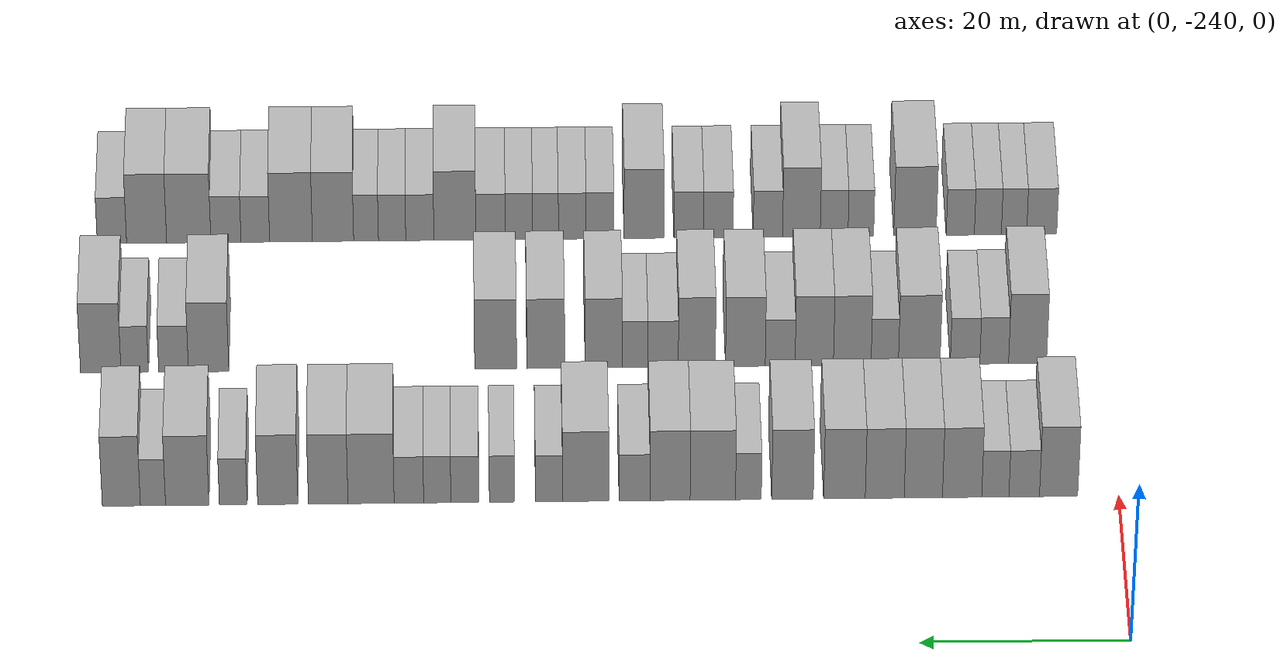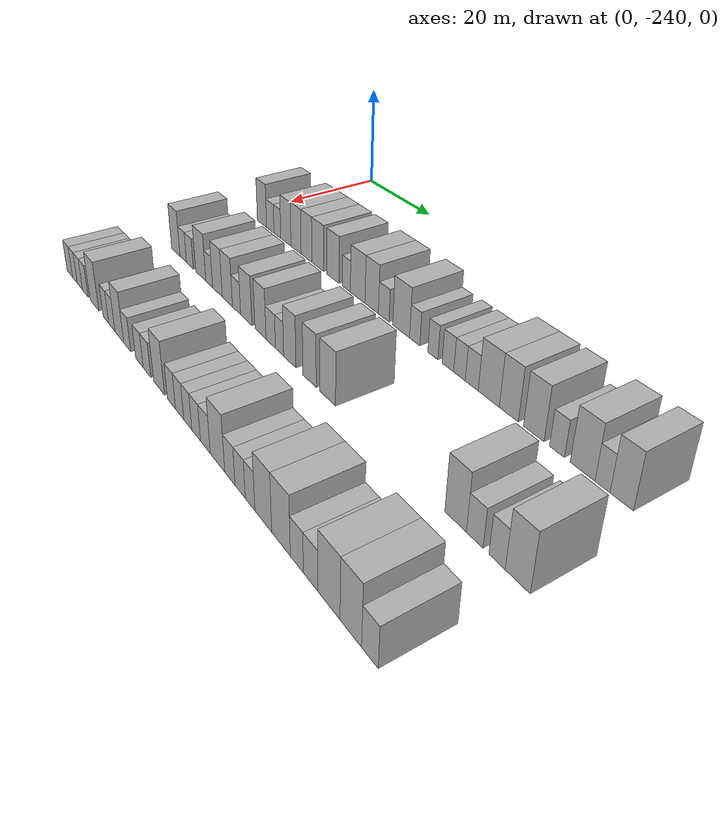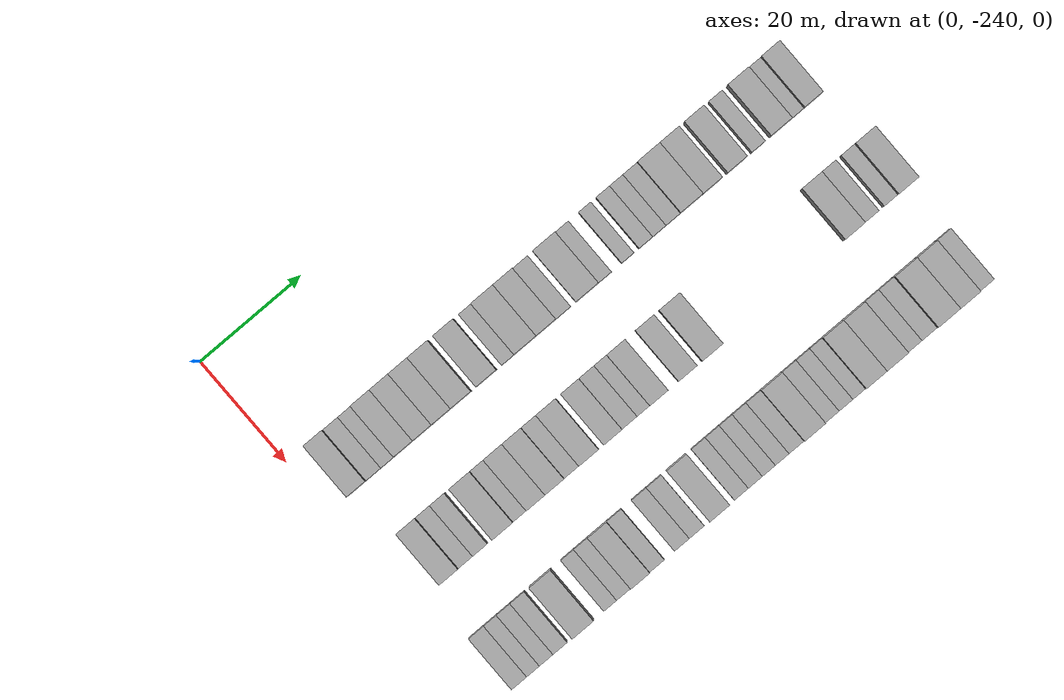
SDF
<sdf version="1.6">
 <world name="default">
  <model name="building_1">
   <static>1</static>
   <pose>25.0000 -234.1658 0 0.000000 0.000000 0.000000</pose>
   <link name="link">
    <pose>0 0 4.50 0 0 0</pose>
    <collision name="collision"><geometry><box><size>10.0000 3.6684 9.0000</size></box></geometry></collision>
    <visual name="visual">
     <cast_shadows>0</cast_shadows>
     <geometry><box><size>10.0000 3.6684 9.0000</size></box></geometry>
     <material>
      <script>
       <uri>model://HANNAS_wall/materials/scripts</uri>
       <uri>model://HANNAS_wall/materials/textures</uri>
       <name>vrc/HANNAS_wall</name>
      </script>
     </material>
    </visual>
   </link>
  </model>
  <model name="building_2">
   <static>1</static>
   <pose>25.0000 -230.8665 0 0.000000 0.000000 0.000000</pose>
   <link name="link">
    <pose>0 0 3.00 0 0 0</pose>
    <collision name="collision"><geometry><box><size>10.0000 2.9303 6.0000</size></box></geometry></collision>
    <visual name="visual">
     <cast_shadows>0</cast_shadows>
     <geometry><box><size>10.0000 2.9303 6.0000</size></box></geometry>
     <material>
      <script>
       <uri>model://HANNAS_wall/materials/scripts</uri>
       <uri>model://HANNAS_wall/materials/textures</uri>
       <name>vrc/HANNAS_wall</name>
      </script>
     </material>
    </visual>
   </link>
  </model>
  <model name="building_3">
   <static>1</static>
   <pose>25.0000 -228.0963 0 0.000000 0.000000 0.000000</pose>
   <link name="link">
    <pose>0 0 3.00 0 0 0</pose>
    <collision name="collision"><geometry><box><size>10.0000 2.6101 6.0000</size></box></geometry></collision>
    <visual name="visual">
     <cast_shadows>0</cast_shadows>
     <geometry><box><size>10.0000 2.6101 6.0000</size></box></geometry>
     <material>
      <script>
       <uri>model://HANNAS_wall/materials/scripts</uri>
       <uri>model://HANNAS_wall/materials/textures</uri>
       <name>vrc/HANNAS_wall</name>
      </script>
     </material>
    </visual>
   </link>
  </model>
  <model name="building_4">
   <static>1</static>
   <pose>25.0000 -224.9095 0 0.000000 0.000000 0.000000</pose>
   <link name="link">
    <pose>0 0 4.50 0 0 0</pose>
    <collision name="collision"><geometry><box><size>10.0000 3.7635 9.0000</size></box></geometry></collision>
    <visual name="visual">
     <cast_shadows>0</cast_shadows>
     <geometry><box><size>10.0000 3.7635 9.0000</size></box></geometry>
     <material>
      <script>
       <uri>model://HANNAS_wall/materials/scripts</uri>
       <uri>model://HANNAS_wall/materials/textures</uri>
       <name>vrc/HANNAS_wall</name>
      </script>
     </material>
    </visual>
   </link>
  </model>
  <model name="building_5">
   <static>1</static>
   <pose>25.0000 -221.1921 0 0.000000 0.000000 0.000000</pose>
   <link name="link">
    <pose>0 0 4.50 0 0 0</pose>
    <collision name="collision"><geometry><box><size>10.0000 3.6712 9.0000</size></box></geometry></collision>
    <visual name="visual">
     <cast_shadows>0</cast_shadows>
     <geometry><box><size>10.0000 3.6712 9.0000</size></box></geometry>
     <material>
      <script>
       <uri>model://HANNAS_wall/materials/scripts</uri>
       <uri>model://HANNAS_wall/materials/textures</uri>
       <name>vrc/HANNAS_wall</name>
      </script>
     </material>
    </visual>
   </link>
  </model>
  <model name="building_6">
   <static>1</static>
   <pose>25.0000 -217.4901 0 0.000000 0.000000 0.000000</pose>
   <link name="link">
    <pose>0 0 4.50 0 0 0</pose>
    <collision name="collision"><geometry><box><size>10.0000 3.7329 9.0000</size></box></geometry></collision>
    <visual name="visual">
     <cast_shadows>0</cast_shadows>
     <geometry><box><size>10.0000 3.7329 9.0000</size></box></geometry>
     <material>
      <script>
       <uri>model://HANNAS_wall/materials/scripts</uri>
       <uri>model://HANNAS_wall/materials/textures</uri>
       <name>vrc/HANNAS_wall</name>
      </script>
     </material>
    </visual>
   </link>
  </model>
  <model name="building_7">
   <static>1</static>
   <pose>25.0000 -213.6293 0 0.000000 0.000000 0.000000</pose>
   <link name="link">
    <pose>0 0 4.50 0 0 0</pose>
    <collision name="collision"><geometry><box><size>10.0000 3.9886 9.0000</size></box></geometry></collision>
    <visual name="visual">
     <cast_shadows>0</cast_shadows>
     <geometry><box><size>10.0000 3.9886 9.0000</size></box></geometry>
     <material>
      <script>
       <uri>model://HANNAS_wall/materials/scripts</uri>
       <uri>model://HANNAS_wall/materials/textures</uri>
       <name>vrc/HANNAS_wall</name>
      </script>
     </material>
    </visual>
   </link>
  </model>
  <model name="building_8">
   <static>1</static>
   <pose>25.0000 -208.6443 0 0.000000 0.000000 0.000000</pose>
   <link name="link">
    <pose>0 0 4.50 0 0 0</pose>
    <collision name="collision"><geometry><box><size>10.0000 3.9814 9.0000</size></box></geometry></collision>
    <visual name="visual">
     <cast_shadows>0</cast_shadows>
     <geometry><box><size>10.0000 3.9814 9.0000</size></box></geometry>
     <material>
      <script>
       <uri>model://HANNAS_wall/materials/scripts</uri>
       <uri>model://HANNAS_wall/materials/textures</uri>
       <name>vrc/HANNAS_wall</name>
      </script>
     </material>
    </visual>
   </link>
  </model>
  <model name="building_9">
   <static>1</static>
   <pose>25.0000 -204.4172 0 0.000000 0.000000 0.000000</pose>
   <link name="link">
    <pose>0 0 3.00 0 0 0</pose>
    <collision name="collision"><geometry><box><size>10.0000 2.4729 6.0000</size></box></geometry></collision>
    <visual name="visual">
     <cast_shadows>0</cast_shadows>
     <geometry><box><size>10.0000 2.4729 6.0000</size></box></geometry>
     <material>
      <script>
       <uri>model://HANNAS_wall/materials/scripts</uri>
       <uri>model://HANNAS_wall/materials/textures</uri>
       <name>vrc/HANNAS_wall</name>
      </script>
     </material>
    </visual>
   </link>
  </model>
  <model name="building_10">
   <static>1</static>
   <pose>25.0000 -201.0050 0 0.000000 0.000000 0.000000</pose>
   <link name="link">
    <pose>0 0 4.50 0 0 0</pose>
    <collision name="collision"><geometry><box><size>10.0000 4.3516 9.0000</size></box></geometry></collision>
    <visual name="visual">
     <cast_shadows>0</cast_shadows>
     <geometry><box><size>10.0000 4.3516 9.0000</size></box></geometry>
     <material>
      <script>
       <uri>model://HANNAS_wall/materials/scripts</uri>
       <uri>model://HANNAS_wall/materials/textures</uri>
       <name>vrc/HANNAS_wall</name>
      </script>
     </material>
    </visual>
   </link>
  </model>
  <model name="building_11">
   <static>1</static>
   <pose>25.0000 -196.9007 0 0.000000 0.000000 0.000000</pose>
   <link name="link">
    <pose>0 0 4.50 0 0 0</pose>
    <collision name="collision"><geometry><box><size>10.0000 3.8571 9.0000</size></box></geometry></collision>
    <visual name="visual">
     <cast_shadows>0</cast_shadows>
     <geometry><box><size>10.0000 3.8571 9.0000</size></box></geometry>
     <material>
      <script>
       <uri>model://HANNAS_wall/materials/scripts</uri>
       <uri>model://HANNAS_wall/materials/textures</uri>
       <name>vrc/HANNAS_wall</name>
      </script>
     </material>
    </visual>
   </link>
  </model>
  <model name="building_12">
   <static>1</static>
   <pose>25.0000 -193.5009 0 0.000000 0.000000 0.000000</pose>
   <link name="link">
    <pose>0 0 3.00 0 0 0</pose>
    <collision name="collision"><geometry><box><size>10.0000 2.9424 6.0000</size></box></geometry></collision>
    <visual name="visual">
     <cast_shadows>0</cast_shadows>
     <geometry><box><size>10.0000 2.9424 6.0000</size></box></geometry>
     <material>
      <script>
       <uri>model://HANNAS_wall/materials/scripts</uri>
       <uri>model://HANNAS_wall/materials/textures</uri>
       <name>vrc/HANNAS_wall</name>
      </script>
     </material>
    </visual>
   </link>
  </model>
  <model name="building_13">
   <static>1</static>
   <pose>25.0000 -188.8148 0 0.000000 0.000000 0.000000</pose>
   <link name="link">
    <pose>0 0 4.50 0 0 0</pose>
    <collision name="collision"><geometry><box><size>10.0000 4.4298 9.0000</size></box></geometry></collision>
    <visual name="visual">
     <cast_shadows>0</cast_shadows>
     <geometry><box><size>10.0000 4.4298 9.0000</size></box></geometry>
     <material>
      <script>
       <uri>model://HANNAS_wall/materials/scripts</uri>
       <uri>model://HANNAS_wall/materials/textures</uri>
       <name>vrc/HANNAS_wall</name>
      </script>
     </material>
    </visual>
   </link>
  </model>
  <model name="building_14">
   <static>1</static>
   <pose>25.0000 -185.3080 0 0.000000 0.000000 0.000000</pose>
   <link name="link">
    <pose>0 0 3.00 0 0 0</pose>
    <collision name="collision"><geometry><box><size>10.0000 2.5838 6.0000</size></box></geometry></collision>
    <visual name="visual">
     <cast_shadows>0</cast_shadows>
     <geometry><box><size>10.0000 2.5838 6.0000</size></box></geometry>
     <material>
      <script>
       <uri>model://HANNAS_wall/materials/scripts</uri>
       <uri>model://HANNAS_wall/materials/textures</uri>
       <name>vrc/HANNAS_wall</name>
      </script>
     </material>
    </visual>
   </link>
  </model>
  <model name="building_15">
   <static>1</static>
   <pose>25.0000 -180.8055 0 0.000000 0.000000 0.000000</pose>
   <link name="link">
    <pose>0 0 3.00 0 0 0</pose>
    <collision name="collision"><geometry><box><size>10.0000 2.4212 6.0000</size></box></geometry></collision>
    <visual name="visual">
     <cast_shadows>0</cast_shadows>
     <geometry><box><size>10.0000 2.4212 6.0000</size></box></geometry>
     <material>
      <script>
       <uri>model://HANNAS_wall/materials/scripts</uri>
       <uri>model://HANNAS_wall/materials/textures</uri>
       <name>vrc/HANNAS_wall</name>
      </script>
     </material>
    </visual>
   </link>
  </model>
  <model name="building_16">
   <static>1</static>
   <pose>25.0000 -177.2514 0 0.000000 0.000000 0.000000</pose>
   <link name="link">
    <pose>0 0 3.00 0 0 0</pose>
    <collision name="collision"><geometry><box><size>10.0000 2.6870 6.0000</size></box></geometry></collision>
    <visual name="visual">
     <cast_shadows>0</cast_shadows>
     <geometry><box><size>10.0000 2.6870 6.0000</size></box></geometry>
     <material>
      <script>
       <uri>model://HANNAS_wall/materials/scripts</uri>
       <uri>model://HANNAS_wall/materials/textures</uri>
       <name>vrc/HANNAS_wall</name>
      </script>
     </material>
    </visual>
   </link>
  </model>
  <model name="building_17">
   <static>1</static>
   <pose>25.0000 -174.6028 0 0.000000 0.000000 0.000000</pose>
   <link name="link">
    <pose>0 0 3.00 0 0 0</pose>
    <collision name="collision"><geometry><box><size>10.0000 2.6101 6.0000</size></box></geometry></collision>
    <visual name="visual">
     <cast_shadows>0</cast_shadows>
     <geometry><box><size>10.0000 2.6101 6.0000</size></box></geometry>
     <material>
      <script>
       <uri>model://HANNAS_wall/materials/scripts</uri>
       <uri>model://HANNAS_wall/materials/textures</uri>
       <name>vrc/HANNAS_wall</name>
      </script>
     </material>
    </visual>
   </link>
  </model>
  <model name="building_18">
   <static>1</static>
   <pose>25.0000 -171.8830 0 0.000000 0.000000 0.000000</pose>
   <link name="link">
    <pose>0 0 3.00 0 0 0</pose>
    <collision name="collision"><geometry><box><size>10.0000 2.8294 6.0000</size></box></geometry></collision>
    <visual name="visual">
     <cast_shadows>0</cast_shadows>
     <geometry><box><size>10.0000 2.8294 6.0000</size></box></geometry>
     <material>
      <script>
       <uri>model://HANNAS_wall/materials/scripts</uri>
       <uri>model://HANNAS_wall/materials/textures</uri>
       <name>vrc/HANNAS_wall</name>
      </script>
     </material>
    </visual>
   </link>
  </model>
  <model name="building_19">
   <static>1</static>
   <pose>25.0000 -168.2579 0 0.000000 0.000000 0.000000</pose>
   <link name="link">
    <pose>0 0 4.50 0 0 0</pose>
    <collision name="collision"><geometry><box><size>10.0000 4.4210 9.0000</size></box></geometry></collision>
    <visual name="visual">
     <cast_shadows>0</cast_shadows>
     <geometry><box><size>10.0000 4.4210 9.0000</size></box></geometry>
     <material>
      <script>
       <uri>model://HANNAS_wall/materials/scripts</uri>
       <uri>model://HANNAS_wall/materials/textures</uri>
       <name>vrc/HANNAS_wall</name>
      </script>
     </material>
    </visual>
   </link>
  </model>
  <model name="building_20">
   <static>1</static>
   <pose>25.0000 -164.1533 0 0.000000 0.000000 0.000000</pose>
   <link name="link">
    <pose>0 0 4.50 0 0 0</pose>
    <collision name="collision"><geometry><box><size>10.0000 3.7882 9.0000</size></box></geometry></collision>
    <visual name="visual">
     <cast_shadows>0</cast_shadows>
     <geometry><box><size>10.0000 3.7882 9.0000</size></box></geometry>
     <material>
      <script>
       <uri>model://HANNAS_wall/materials/scripts</uri>
       <uri>model://HANNAS_wall/materials/textures</uri>
       <name>vrc/HANNAS_wall</name>
      </script>
     </material>
    </visual>
   </link>
  </model>
  <model name="building_21">
   <static>1</static>
   <pose>25.0000 -159.3294 0 0.000000 0.000000 0.000000</pose>
   <link name="link">
    <pose>0 0 4.50 0 0 0</pose>
    <collision name="collision"><geometry><box><size>10.0000 3.8596 9.0000</size></box></geometry></collision>
    <visual name="visual">
     <cast_shadows>0</cast_shadows>
     <geometry><box><size>10.0000 3.8596 9.0000</size></box></geometry>
     <material>
      <script>
       <uri>model://HANNAS_wall/materials/scripts</uri>
       <uri>model://HANNAS_wall/materials/textures</uri>
       <name>vrc/HANNAS_wall</name>
      </script>
     </material>
    </visual>
   </link>
  </model>
  <model name="building_22">
   <static>1</static>
   <pose>25.0000 -155.0684 0 0.000000 0.000000 0.000000</pose>
   <link name="link">
    <pose>0 0 3.00 0 0 0</pose>
    <collision name="collision"><geometry><box><size>10.0000 2.6623 6.0000</size></box></geometry></collision>
    <visual name="visual">
     <cast_shadows>0</cast_shadows>
     <geometry><box><size>10.0000 2.6623 6.0000</size></box></geometry>
     <material>
      <script>
       <uri>model://HANNAS_wall/materials/scripts</uri>
       <uri>model://HANNAS_wall/materials/textures</uri>
       <name>vrc/HANNAS_wall</name>
      </script>
     </material>
    </visual>
   </link>
  </model>
  <model name="building_23">
   <static>1</static>
   <pose>25.0000 -150.6576 0 0.000000 0.000000 0.000000</pose>
   <link name="link">
    <pose>0 0 4.50 0 0 0</pose>
    <collision name="collision"><geometry><box><size>10.0000 4.1593 9.0000</size></box></geometry></collision>
    <visual name="visual">
     <cast_shadows>0</cast_shadows>
     <geometry><box><size>10.0000 4.1593 9.0000</size></box></geometry>
     <material>
      <script>
       <uri>model://HANNAS_wall/materials/scripts</uri>
       <uri>model://HANNAS_wall/materials/textures</uri>
       <name>vrc/HANNAS_wall</name>
      </script>
     </material>
    </visual>
   </link>
  </model>
  <model name="building_24">
   <static>1</static>
   <pose>25.0000 -147.3732 0 0.000000 0.000000 0.000000</pose>
   <link name="link">
    <pose>0 0 3.00 0 0 0</pose>
    <collision name="collision"><geometry><box><size>10.0000 2.4095 6.0000</size></box></geometry></collision>
    <visual name="visual">
     <cast_shadows>0</cast_shadows>
     <geometry><box><size>10.0000 2.4095 6.0000</size></box></geometry>
     <material>
      <script>
       <uri>model://HANNAS_wall/materials/scripts</uri>
       <uri>model://HANNAS_wall/materials/textures</uri>
       <name>vrc/HANNAS_wall</name>
      </script>
     </material>
    </visual>
   </link>
  </model>
  <model name="building_25">
   <static>1</static>
   <pose>25.0000 -144.3496 0 0.000000 0.000000 0.000000</pose>
   <link name="link">
    <pose>0 0 4.50 0 0 0</pose>
    <collision name="collision"><geometry><box><size>10.0000 3.6378 9.0000</size></box></geometry></collision>
    <visual name="visual">
     <cast_shadows>0</cast_shadows>
     <geometry><box><size>10.0000 3.6378 9.0000</size></box></geometry>
     <material>
      <script>
       <uri>model://HANNAS_wall/materials/scripts</uri>
       <uri>model://HANNAS_wall/materials/textures</uri>
       <name>vrc/HANNAS_wall</name>
      </script>
     </material>
    </visual>
   </link>
  </model>
  <model name="building_126">
   <static>1</static>
   <pose>44.0000 -232.1509 0 0.000000 0.000000 0.000000</pose>
   <link name="link">
    <pose>0 0 4.50 0 0 0</pose>
    <collision name="collision"><geometry><box><size>10.0000 3.6982 9.0000</size></box></geometry></collision>
    <visual name="visual">
     <cast_shadows>0</cast_shadows>
     <geometry><box><size>10.0000 3.6982 9.0000</size></box></geometry>
     <material>
      <script>
       <uri>model://HANNAS_wall/materials/scripts</uri>
       <uri>model://HANNAS_wall/materials/textures</uri>
       <name>vrc/HANNAS_wall</name>
      </script>
     </material>
    </visual>
   </link>
  </model>
  <model name="building_127">
   <static>1</static>
   <pose>44.0000 -228.8991 0 0.000000 0.000000 0.000000</pose>
   <link name="link">
    <pose>0 0 3.00 0 0 0</pose>
    <collision name="collision"><geometry><box><size>10.0000 2.8053 6.0000</size></box></geometry></collision>
    <visual name="visual">
     <cast_shadows>0</cast_shadows>
     <geometry><box><size>10.0000 2.8053 6.0000</size></box></geometry>
     <material>
      <script>
       <uri>model://HANNAS_wall/materials/scripts</uri>
       <uri>model://HANNAS_wall/materials/textures</uri>
       <name>vrc/HANNAS_wall</name>
      </script>
     </material>
    </visual>
   </link>
  </model>
  <model name="building_128">
   <static>1</static>
   <pose>44.0000 -226.0578 0 0.000000 0.000000 0.000000</pose>
   <link name="link">
    <pose>0 0 3.00 0 0 0</pose>
    <collision name="collision"><geometry><box><size>10.0000 2.8773 6.0000</size></box></geometry></collision>
    <visual name="visual">
     <cast_shadows>0</cast_shadows>
     <geometry><box><size>10.0000 2.8773 6.0000</size></box></geometry>
     <material>
      <script>
       <uri>model://HANNAS_wall/materials/scripts</uri>
       <uri>model://HANNAS_wall/materials/textures</uri>
       <name>vrc/HANNAS_wall</name>
      </script>
     </material>
    </visual>
   </link>
  </model>
  <model name="building_129">
   <static>1</static>
   <pose>44.0000 -221.5878 0 0.000000 0.000000 0.000000</pose>
   <link name="link">
    <pose>0 0 4.50 0 0 0</pose>
    <collision name="collision"><geometry><box><size>10.0000 4.0626 9.0000</size></box></geometry></collision>
    <visual name="visual">
     <cast_shadows>0</cast_shadows>
     <geometry><box><size>10.0000 4.0626 9.0000</size></box></geometry>
     <material>
      <script>
       <uri>model://HANNAS_wall/materials/scripts</uri>
       <uri>model://HANNAS_wall/materials/textures</uri>
       <name>vrc/HANNAS_wall</name>
      </script>
     </material>
    </visual>
   </link>
  </model>
  <model name="building_130">
   <static>1</static>
   <pose>44.0000 -218.2245 0 0.000000 0.000000 0.000000</pose>
   <link name="link">
    <pose>0 0 3.00 0 0 0</pose>
    <collision name="collision"><geometry><box><size>10.0000 2.6639 6.0000</size></box></geometry></collision>
    <visual name="visual">
     <cast_shadows>0</cast_shadows>
     <geometry><box><size>10.0000 2.6639 6.0000</size></box></geometry>
     <material>
      <script>
       <uri>model://HANNAS_wall/materials/scripts</uri>
       <uri>model://HANNAS_wall/materials/textures</uri>
       <name>vrc/HANNAS_wall</name>
      </script>
     </material>
    </visual>
   </link>
  </model>
  <model name="building_131">
   <static>1</static>
   <pose>44.0000 -215.0575 0 0.000000 0.000000 0.000000</pose>
   <link name="link">
    <pose>0 0 4.50 0 0 0</pose>
    <collision name="collision"><geometry><box><size>10.0000 3.6701 9.0000</size></box></geometry></collision>
    <visual name="visual">
     <cast_shadows>0</cast_shadows>
     <geometry><box><size>10.0000 3.6701 9.0000</size></box></geometry>
     <material>
      <script>
       <uri>model://HANNAS_wall/materials/scripts</uri>
       <uri>model://HANNAS_wall/materials/textures</uri>
       <name>vrc/HANNAS_wall</name>
      </script>
     </material>
    </visual>
   </link>
  </model>
  <model name="building_132">
   <static>1</static>
   <pose>44.0000 -211.3542 0 0.000000 0.000000 0.000000</pose>
   <link name="link">
    <pose>0 0 4.50 0 0 0</pose>
    <collision name="collision"><geometry><box><size>10.0000 3.7365 9.0000</size></box></geometry></collision>
    <visual name="visual">
     <cast_shadows>0</cast_shadows>
     <geometry><box><size>10.0000 3.7365 9.0000</size></box></geometry>
     <material>
      <script>
       <uri>model://HANNAS_wall/materials/scripts</uri>
       <uri>model://HANNAS_wall/materials/textures</uri>
       <name>vrc/HANNAS_wall</name>
      </script>
     </material>
    </visual>
   </link>
  </model>
  <model name="building_133">
   <static>1</static>
   <pose>44.0000 -208.0338 0 0.000000 0.000000 0.000000</pose>
   <link name="link">
    <pose>0 0 3.00 0 0 0</pose>
    <collision name="collision"><geometry><box><size>10.0000 2.9043 6.0000</size></box></geometry></collision>
    <visual name="visual">
     <cast_shadows>0</cast_shadows>
     <geometry><box><size>10.0000 2.9043 6.0000</size></box></geometry>
     <material>
      <script>
       <uri>model://HANNAS_wall/materials/scripts</uri>
       <uri>model://HANNAS_wall/materials/textures</uri>
       <name>vrc/HANNAS_wall</name>
      </script>
     </material>
    </visual>
   </link>
  </model>
  <model name="building_134">
   <static>1</static>
   <pose>44.0000 -204.6474 0 0.000000 0.000000 0.000000</pose>
   <link name="link">
    <pose>0 0 4.50 0 0 0</pose>
    <collision name="collision"><geometry><box><size>10.0000 3.8683 9.0000</size></box></geometry></collision>
    <visual name="visual">
     <cast_shadows>0</cast_shadows>
     <geometry><box><size>10.0000 3.8683 9.0000</size></box></geometry>
     <material>
      <script>
       <uri>model://HANNAS_wall/materials/scripts</uri>
       <uri>model://HANNAS_wall/materials/textures</uri>
       <name>vrc/HANNAS_wall</name>
      </script>
     </material>
    </visual>
   </link>
  </model>
  <model name="building_135">
   <static>1</static>
   <pose>44.0000 -199.9114 0 0.000000 0.000000 0.000000</pose>
   <link name="link">
    <pose>0 0 4.50 0 0 0</pose>
    <collision name="collision"><geometry><box><size>10.0000 3.6038 9.0000</size></box></geometry></collision>
    <visual name="visual">
     <cast_shadows>0</cast_shadows>
     <geometry><box><size>10.0000 3.6038 9.0000</size></box></geometry>
     <material>
      <script>
       <uri>model://HANNAS_wall/materials/scripts</uri>
       <uri>model://HANNAS_wall/materials/textures</uri>
       <name>vrc/HANNAS_wall</name>
      </script>
     </material>
    </visual>
   </link>
  </model>
  <model name="building_136">
   <static>1</static>
   <pose>44.0000 -196.6252 0 0.000000 0.000000 0.000000</pose>
   <link name="link">
    <pose>0 0 3.00 0 0 0</pose>
    <collision name="collision"><geometry><box><size>10.0000 2.9686 6.0000</size></box></geometry></collision>
    <visual name="visual">
     <cast_shadows>0</cast_shadows>
     <geometry><box><size>10.0000 2.9686 6.0000</size></box></geometry>
     <material>
      <script>
       <uri>model://HANNAS_wall/materials/scripts</uri>
       <uri>model://HANNAS_wall/materials/textures</uri>
       <name>vrc/HANNAS_wall</name>
      </script>
     </material>
    </visual>
   </link>
  </model>
  <model name="building_137">
   <static>1</static>
   <pose>44.0000 -193.9033 0 0.000000 0.000000 0.000000</pose>
   <link name="link">
    <pose>0 0 3.00 0 0 0</pose>
    <collision name="collision"><geometry><box><size>10.0000 2.4753 6.0000</size></box></geometry></collision>
    <visual name="visual">
     <cast_shadows>0</cast_shadows>
     <geometry><box><size>10.0000 2.4753 6.0000</size></box></geometry>
     <material>
      <script>
       <uri>model://HANNAS_wall/materials/scripts</uri>
       <uri>model://HANNAS_wall/materials/textures</uri>
       <name>vrc/HANNAS_wall</name>
      </script>
     </material>
    </visual>
   </link>
  </model>
  <model name="building_138">
   <static>1</static>
   <pose>44.0000 -190.8539 0 0.000000 0.000000 0.000000</pose>
   <link name="link">
    <pose>0 0 4.50 0 0 0</pose>
    <collision name="collision"><geometry><box><size>10.0000 3.6235 9.0000</size></box></geometry></collision>
    <visual name="visual">
     <cast_shadows>0</cast_shadows>
     <geometry><box><size>10.0000 3.6235 9.0000</size></box></geometry>
     <material>
      <script>
       <uri>model://HANNAS_wall/materials/scripts</uri>
       <uri>model://HANNAS_wall/materials/textures</uri>
       <name>vrc/HANNAS_wall</name>
      </script>
     </material>
    </visual>
   </link>
  </model>
  <model name="building_139">
   <static>1</static>
   <pose>44.0000 -185.2040 0 0.000000 0.000000 0.000000</pose>
   <link name="link">
    <pose>0 0 4.50 0 0 0</pose>
    <collision name="collision"><geometry><box><size>10.0000 3.6763 9.0000</size></box></geometry></collision>
    <visual name="visual">
     <cast_shadows>0</cast_shadows>
     <geometry><box><size>10.0000 3.6763 9.0000</size></box></geometry>
     <material>
      <script>
       <uri>model://HANNAS_wall/materials/scripts</uri>
       <uri>model://HANNAS_wall/materials/textures</uri>
       <name>vrc/HANNAS_wall</name>
      </script>
     </material>
    </visual>
   </link>
  </model>
  <model name="building_140">
   <static>1</static>
   <pose>44.0000 -180.3250 0 0.000000 0.000000 0.000000</pose>
   <link name="link">
    <pose>0 0 4.50 0 0 0</pose>
    <collision name="collision"><geometry><box><size>10.0000 4.0817 9.0000</size></box></geometry></collision>
    <visual name="visual">
     <cast_shadows>0</cast_shadows>
     <geometry><box><size>10.0000 4.0817 9.0000</size></box></geometry>
     <material>
      <script>
       <uri>model://HANNAS_wall/materials/scripts</uri>
       <uri>model://HANNAS_wall/materials/textures</uri>
       <name>vrc/HANNAS_wall</name>
      </script>
     </material>
    </visual>
   </link>
  </model>
  <model name="building_141">
   <static>1</static>
   <pose>44.0000 -152.3847 0 0.000000 0.000000 0.000000</pose>
   <link name="link">
    <pose>0 0 4.50 0 0 0</pose>
    <collision name="collision"><geometry><box><size>10.0000 3.9329 9.0000</size></box></geometry></collision>
    <visual name="visual">
     <cast_shadows>0</cast_shadows>
     <geometry><box><size>10.0000 3.9329 9.0000</size></box></geometry>
     <material>
      <script>
       <uri>model://HANNAS_wall/materials/scripts</uri>
       <uri>model://HANNAS_wall/materials/textures</uri>
       <name>vrc/HANNAS_wall</name>
      </script>
     </material>
    </visual>
   </link>
  </model>
  <model name="building_142">
   <static>1</static>
   <pose>44.0000 -148.9745 0 0.000000 0.000000 0.000000</pose>
   <link name="link">
    <pose>0 0 3.00 0 0 0</pose>
    <collision name="collision"><geometry><box><size>10.0000 2.8876 6.0000</size></box></geometry></collision>
    <visual name="visual">
     <cast_shadows>0</cast_shadows>
     <geometry><box><size>10.0000 2.8876 6.0000</size></box></geometry>
     <material>
      <script>
       <uri>model://HANNAS_wall/materials/scripts</uri>
       <uri>model://HANNAS_wall/materials/textures</uri>
       <name>vrc/HANNAS_wall</name>
      </script>
     </material>
    </visual>
   </link>
  </model>
  <model name="building_143">
   <static>1</static>
   <pose>44.0000 -145.1946 0 0.000000 0.000000 0.000000</pose>
   <link name="link">
    <pose>0 0 3.00 0 0 0</pose>
    <collision name="collision"><geometry><box><size>10.0000 2.6723 6.0000</size></box></geometry></collision>
    <visual name="visual">
     <cast_shadows>0</cast_shadows>
     <geometry><box><size>10.0000 2.6723 6.0000</size></box></geometry>
     <material>
      <script>
       <uri>model://HANNAS_wall/materials/scripts</uri>
       <uri>model://HANNAS_wall/materials/textures</uri>
       <name>vrc/HANNAS_wall</name>
      </script>
     </material>
    </visual>
   </link>
  </model>
  <model name="building_144">
   <static>1</static>
   <pose>44.0000 -141.8891 0 0.000000 0.000000 0.000000</pose>
   <link name="link">
    <pose>0 0 4.50 0 0 0</pose>
    <collision name="collision"><geometry><box><size>10.0000 3.9387 9.0000</size></box></geometry></collision>
    <visual name="visual">
     <cast_shadows>0</cast_shadows>
     <geometry><box><size>10.0000 3.9387 9.0000</size></box></geometry>
     <material>
      <script>
       <uri>model://HANNAS_wall/materials/scripts</uri>
       <uri>model://HANNAS_wall/materials/textures</uri>
       <name>vrc/HANNAS_wall</name>
      </script>
     </material>
    </visual>
   </link>
  </model>
  <model name="building_238">
   <static>1</static>
   <pose>63.0000 -234.5111 0 0.000000 0.000000 0.000000</pose>
   <link name="link">
    <pose>0 0 3.00 0 0 0</pose>
    <collision name="collision"><geometry><box><size>10.0000 2.9778 6.0000</size></box></geometry></collision>
    <visual name="visual">
     <cast_shadows>0</cast_shadows>
     <geometry><box><size>10.0000 2.9778 6.0000</size></box></geometry>
     <material>
      <script>
       <uri>model://HANNAS_wall/materials/scripts</uri>
       <uri>model://HANNAS_wall/materials/textures</uri>
       <name>vrc/HANNAS_wall</name>
      </script>
     </material>
    </visual>
   </link>
  </model>
  <model name="building_239">
   <static>1</static>
   <pose>63.0000 -231.7676 0 0.000000 0.000000 0.000000</pose>
   <link name="link">
    <pose>0 0 3.00 0 0 0</pose>
    <collision name="collision"><geometry><box><size>10.0000 2.5092 6.0000</size></box></geometry></collision>
    <visual name="visual">
     <cast_shadows>0</cast_shadows>
     <geometry><box><size>10.0000 2.5092 6.0000</size></box></geometry>
     <material>
      <script>
       <uri>model://HANNAS_wall/materials/scripts</uri>
       <uri>model://HANNAS_wall/materials/textures</uri>
       <name>vrc/HANNAS_wall</name>
      </script>
     </material>
    </visual>
   </link>
  </model>
  <model name="building_240">
   <static>1</static>
   <pose>63.0000 -229.1777 0 0.000000 0.000000 0.000000</pose>
   <link name="link">
    <pose>0 0 3.00 0 0 0</pose>
    <collision name="collision"><geometry><box><size>10.0000 2.6707 6.0000</size></box></geometry></collision>
    <visual name="visual">
     <cast_shadows>0</cast_shadows>
     <geometry><box><size>10.0000 2.6707 6.0000</size></box></geometry>
     <material>
      <script>
       <uri>model://HANNAS_wall/materials/scripts</uri>
       <uri>model://HANNAS_wall/materials/textures</uri>
       <name>vrc/HANNAS_wall</name>
      </script>
     </material>
    </visual>
   </link>
  </model>
  <model name="building_241">
   <static>1</static>
   <pose>63.0000 -226.4483 0 0.000000 0.000000 0.000000</pose>
   <link name="link">
    <pose>0 0 3.00 0 0 0</pose>
    <collision name="collision"><geometry><box><size>10.0000 2.7881 6.0000</size></box></geometry></collision>
    <visual name="visual">
     <cast_shadows>0</cast_shadows>
     <geometry><box><size>10.0000 2.7881 6.0000</size></box></geometry>
     <material>
      <script>
       <uri>model://HANNAS_wall/materials/scripts</uri>
       <uri>model://HANNAS_wall/materials/textures</uri>
       <name>vrc/HANNAS_wall</name>
      </script>
     </material>
    </visual>
   </link>
  </model>
  <model name="building_242">
   <static>1</static>
   <pose>63.0000 -221.9590 0 0.000000 0.000000 0.000000</pose>
   <link name="link">
    <pose>0 0 4.50 0 0 0</pose>
    <collision name="collision"><geometry><box><size>10.0000 4.1905 9.0000</size></box></geometry></collision>
    <visual name="visual">
     <cast_shadows>0</cast_shadows>
     <geometry><box><size>10.0000 4.1905 9.0000</size></box></geometry>
     <material>
      <script>
       <uri>model://HANNAS_wall/materials/scripts</uri>
       <uri>model://HANNAS_wall/materials/textures</uri>
       <name>vrc/HANNAS_wall</name>
      </script>
     </material>
    </visual>
   </link>
  </model>
  <model name="building_243">
   <static>1</static>
   <pose>63.0000 -216.5929 0 0.000000 0.000000 0.000000</pose>
   <link name="link">
    <pose>0 0 3.00 0 0 0</pose>
    <collision name="collision"><geometry><box><size>10.0000 2.5416 6.0000</size></box></geometry></collision>
    <visual name="visual">
     <cast_shadows>0</cast_shadows>
     <geometry><box><size>10.0000 2.5416 6.0000</size></box></geometry>
     <material>
      <script>
       <uri>model://HANNAS_wall/materials/scripts</uri>
       <uri>model://HANNAS_wall/materials/textures</uri>
       <name>vrc/HANNAS_wall</name>
      </script>
     </material>
    </visual>
   </link>
  </model>
  <model name="building_244">
   <static>1</static>
   <pose>63.0000 -213.9471 0 0.000000 0.000000 0.000000</pose>
   <link name="link">
    <pose>0 0 3.00 0 0 0</pose>
    <collision name="collision"><geometry><box><size>10.0000 2.7501 6.0000</size></box></geometry></collision>
    <visual name="visual">
     <cast_shadows>0</cast_shadows>
     <geometry><box><size>10.0000 2.7501 6.0000</size></box></geometry>
     <material>
      <script>
       <uri>model://HANNAS_wall/materials/scripts</uri>
       <uri>model://HANNAS_wall/materials/textures</uri>
       <name>vrc/HANNAS_wall</name>
      </script>
     </material>
    </visual>
   </link>
  </model>
  <model name="building_245">
   <static>1</static>
   <pose>63.0000 -210.7059 0 0.000000 0.000000 0.000000</pose>
   <link name="link">
    <pose>0 0 4.50 0 0 0</pose>
    <collision name="collision"><geometry><box><size>10.0000 3.7323 9.0000</size></box></geometry></collision>
    <visual name="visual">
     <cast_shadows>0</cast_shadows>
     <geometry><box><size>10.0000 3.7323 9.0000</size></box></geometry>
     <material>
      <script>
       <uri>model://HANNAS_wall/materials/scripts</uri>
       <uri>model://HANNAS_wall/materials/textures</uri>
       <name>vrc/HANNAS_wall</name>
      </script>
     </material>
    </visual>
   </link>
  </model>
  <model name="building_246">
   <static>1</static>
   <pose>63.0000 -207.3904 0 0.000000 0.000000 0.000000</pose>
   <link name="link">
    <pose>0 0 3.00 0 0 0</pose>
    <collision name="collision"><geometry><box><size>10.0000 2.8986 6.0000</size></box></geometry></collision>
    <visual name="visual">
     <cast_shadows>0</cast_shadows>
     <geometry><box><size>10.0000 2.8986 6.0000</size></box></geometry>
     <material>
      <script>
       <uri>model://HANNAS_wall/materials/scripts</uri>
       <uri>model://HANNAS_wall/materials/textures</uri>
       <name>vrc/HANNAS_wall</name>
      </script>
     </material>
    </visual>
   </link>
  </model>
  <model name="building_247">
   <static>1</static>
   <pose>63.0000 -202.4837 0 0.000000 0.000000 0.000000</pose>
   <link name="link">
    <pose>0 0 3.00 0 0 0</pose>
    <collision name="collision"><geometry><box><size>10.0000 2.9148 6.0000</size></box></geometry></collision>
    <visual name="visual">
     <cast_shadows>0</cast_shadows>
     <geometry><box><size>10.0000 2.9148 6.0000</size></box></geometry>
     <material>
      <script>
       <uri>model://HANNAS_wall/materials/scripts</uri>
       <uri>model://HANNAS_wall/materials/textures</uri>
       <name>vrc/HANNAS_wall</name>
      </script>
     </material>
    </visual>
   </link>
  </model>
  <model name="building_248">
   <static>1</static>
   <pose>63.0000 -199.5553 0 0.000000 0.000000 0.000000</pose>
   <link name="link">
    <pose>0 0 3.00 0 0 0</pose>
    <collision name="collision"><geometry><box><size>10.0000 2.9421 6.0000</size></box></geometry></collision>
    <visual name="visual">
     <cast_shadows>0</cast_shadows>
     <geometry><box><size>10.0000 2.9421 6.0000</size></box></geometry>
     <material>
      <script>
       <uri>model://HANNAS_wall/materials/scripts</uri>
       <uri>model://HANNAS_wall/materials/textures</uri>
       <name>vrc/HANNAS_wall</name>
      </script>
     </material>
    </visual>
   </link>
  </model>
  <model name="building_249">
   <static>1</static>
   <pose>63.0000 -195.1201 0 0.000000 0.000000 0.000000</pose>
   <link name="link">
    <pose>0 0 4.50 0 0 0</pose>
    <collision name="collision"><geometry><box><size>10.0000 3.9283 9.0000</size></box></geometry></collision>
    <visual name="visual">
     <cast_shadows>0</cast_shadows>
     <geometry><box><size>10.0000 3.9283 9.0000</size></box></geometry>
     <material>
      <script>
       <uri>model://HANNAS_wall/materials/scripts</uri>
       <uri>model://HANNAS_wall/materials/textures</uri>
       <name>vrc/HANNAS_wall</name>
      </script>
     </material>
    </visual>
   </link>
  </model>
  <model name="building_250">
   <static>1</static>
   <pose>63.0000 -190.7817 0 0.000000 0.000000 0.000000</pose>
   <link name="link">
    <pose>0 0 3.00 0 0 0</pose>
    <collision name="collision"><geometry><box><size>10.0000 2.7485 6.0000</size></box></geometry></collision>
    <visual name="visual">
     <cast_shadows>0</cast_shadows>
     <geometry><box><size>10.0000 2.7485 6.0000</size></box></geometry>
     <material>
      <script>
       <uri>model://HANNAS_wall/materials/scripts</uri>
       <uri>model://HANNAS_wall/materials/textures</uri>
       <name>vrc/HANNAS_wall</name>
      </script>
     </material>
    </visual>
   </link>
  </model>
  <model name="building_251">
   <static>1</static>
   <pose>63.0000 -188.0329 0 0.000000 0.000000 0.000000</pose>
   <link name="link">
    <pose>0 0 3.00 0 0 0</pose>
    <collision name="collision"><geometry><box><size>10.0000 2.7491 6.0000</size></box></geometry></collision>
    <visual name="visual">
     <cast_shadows>0</cast_shadows>
     <geometry><box><size>10.0000 2.7491 6.0000</size></box></geometry>
     <material>
      <script>
       <uri>model://HANNAS_wall/materials/scripts</uri>
       <uri>model://HANNAS_wall/materials/textures</uri>
       <name>vrc/HANNAS_wall</name>
      </script>
     </material>
    </visual>
   </link>
  </model>
  <model name="building_252">
   <static>1</static>
   <pose>63.0000 -185.3839 0 0.000000 0.000000 0.000000</pose>
   <link name="link">
    <pose>0 0 3.00 0 0 0</pose>
    <collision name="collision"><geometry><box><size>10.0000 2.5489 6.0000</size></box></geometry></collision>
    <visual name="visual">
     <cast_shadows>0</cast_shadows>
     <geometry><box><size>10.0000 2.5489 6.0000</size></box></geometry>
     <material>
      <script>
       <uri>model://HANNAS_wall/materials/scripts</uri>
       <uri>model://HANNAS_wall/materials/textures</uri>
       <name>vrc/HANNAS_wall</name>
      </script>
     </material>
    </visual>
   </link>
  </model>
  <model name="building_253">
   <static>1</static>
   <pose>63.0000 -182.7611 0 0.000000 0.000000 0.000000</pose>
   <link name="link">
    <pose>0 0 3.00 0 0 0</pose>
    <collision name="collision"><geometry><box><size>10.0000 2.6968 6.0000</size></box></geometry></collision>
    <visual name="visual">
     <cast_shadows>0</cast_shadows>
     <geometry><box><size>10.0000 2.6968 6.0000</size></box></geometry>
     <material>
      <script>
       <uri>model://HANNAS_wall/materials/scripts</uri>
       <uri>model://HANNAS_wall/materials/textures</uri>
       <name>vrc/HANNAS_wall</name>
      </script>
     </material>
    </visual>
   </link>
  </model>
  <model name="building_254">
   <static>1</static>
   <pose>63.0000 -179.9522 0 0.000000 0.000000 0.000000</pose>
   <link name="link">
    <pose>0 0 3.00 0 0 0</pose>
    <collision name="collision"><geometry><box><size>10.0000 2.9209 6.0000</size></box></geometry></collision>
    <visual name="visual">
     <cast_shadows>0</cast_shadows>
     <geometry><box><size>10.0000 2.9209 6.0000</size></box></geometry>
     <material>
      <script>
       <uri>model://HANNAS_wall/materials/scripts</uri>
       <uri>model://HANNAS_wall/materials/textures</uri>
       <name>vrc/HANNAS_wall</name>
      </script>
     </material>
    </visual>
   </link>
  </model>
  <model name="building_255">
   <static>1</static>
   <pose>63.0000 -176.4159 0 0.000000 0.000000 0.000000</pose>
   <link name="link">
    <pose>0 0 4.50 0 0 0</pose>
    <collision name="collision"><geometry><box><size>10.0000 4.1517 9.0000</size></box></geometry></collision>
    <visual name="visual">
     <cast_shadows>0</cast_shadows>
     <geometry><box><size>10.0000 4.1517 9.0000</size></box></geometry>
     <material>
      <script>
       <uri>model://HANNAS_wall/materials/scripts</uri>
       <uri>model://HANNAS_wall/materials/textures</uri>
       <name>vrc/HANNAS_wall</name>
      </script>
     </material>
    </visual>
   </link>
  </model>
  <model name="building_256">
   <static>1</static>
   <pose>63.0000 -172.9465 0 0.000000 0.000000 0.000000</pose>
   <link name="link">
    <pose>0 0 3.00 0 0 0</pose>
    <collision name="collision"><geometry><box><size>10.0000 2.7872 6.0000</size></box></geometry></collision>
    <visual name="visual">
     <cast_shadows>0</cast_shadows>
     <geometry><box><size>10.0000 2.7872 6.0000</size></box></geometry>
     <material>
      <script>
       <uri>model://HANNAS_wall/materials/scripts</uri>
       <uri>model://HANNAS_wall/materials/textures</uri>
       <name>vrc/HANNAS_wall</name>
      </script>
     </material>
    </visual>
   </link>
  </model>
  <model name="building_257">
   <static>1</static>
   <pose>63.0000 -170.2020 0 0.000000 0.000000 0.000000</pose>
   <link name="link">
    <pose>0 0 3.00 0 0 0</pose>
    <collision name="collision"><geometry><box><size>10.0000 2.7017 6.0000</size></box></geometry></collision>
    <visual name="visual">
     <cast_shadows>0</cast_shadows>
     <geometry><box><size>10.0000 2.7017 6.0000</size></box></geometry>
     <material>
      <script>
       <uri>model://HANNAS_wall/materials/scripts</uri>
       <uri>model://HANNAS_wall/materials/textures</uri>
       <name>vrc/HANNAS_wall</name>
      </script>
     </material>
    </visual>
   </link>
  </model>
  <model name="building_258">
   <static>1</static>
   <pose>63.0000 -167.6264 0 0.000000 0.000000 0.000000</pose>
   <link name="link">
    <pose>0 0 3.00 0 0 0</pose>
    <collision name="collision"><geometry><box><size>10.0000 2.4494 6.0000</size></box></geometry></collision>
    <visual name="visual">
     <cast_shadows>0</cast_shadows>
     <geometry><box><size>10.0000 2.4494 6.0000</size></box></geometry>
     <material>
      <script>
       <uri>model://HANNAS_wall/materials/scripts</uri>
       <uri>model://HANNAS_wall/materials/textures</uri>
       <name>vrc/HANNAS_wall</name>
      </script>
     </material>
    </visual>
   </link>
  </model>
  <model name="building_259">
   <static>1</static>
   <pose>63.0000 -164.3624 0 0.000000 0.000000 0.000000</pose>
   <link name="link">
    <pose>0 0 4.50 0 0 0</pose>
    <collision name="collision"><geometry><box><size>10.0000 4.0786 9.0000</size></box></geometry></collision>
    <visual name="visual">
     <cast_shadows>0</cast_shadows>
     <geometry><box><size>10.0000 4.0786 9.0000</size></box></geometry>
     <material>
      <script>
       <uri>model://HANNAS_wall/materials/scripts</uri>
       <uri>model://HANNAS_wall/materials/textures</uri>
       <name>vrc/HANNAS_wall</name>
      </script>
     </material>
    </visual>
   </link>
  </model>
  <model name="building_260">
   <static>1</static>
   <pose>63.0000 -160.2088 0 0.000000 0.000000 0.000000</pose>
   <link name="link">
    <pose>0 0 4.50 0 0 0</pose>
    <collision name="collision"><geometry><box><size>10.0000 4.2287 9.0000</size></box></geometry></collision>
    <visual name="visual">
     <cast_shadows>0</cast_shadows>
     <geometry><box><size>10.0000 4.2287 9.0000</size></box></geometry>
     <material>
      <script>
       <uri>model://HANNAS_wall/materials/scripts</uri>
       <uri>model://HANNAS_wall/materials/textures</uri>
       <name>vrc/HANNAS_wall</name>
      </script>
     </material>
    </visual>
   </link>
  </model>
  <model name="building_261">
   <static>1</static>
   <pose>63.0000 -156.6780 0 0.000000 0.000000 0.000000</pose>
   <link name="link">
    <pose>0 0 3.00 0 0 0</pose>
    <collision name="collision"><geometry><box><size>10.0000 2.8328 6.0000</size></box></geometry></collision>
    <visual name="visual">
     <cast_shadows>0</cast_shadows>
     <geometry><box><size>10.0000 2.8328 6.0000</size></box></geometry>
     <material>
      <script>
       <uri>model://HANNAS_wall/materials/scripts</uri>
       <uri>model://HANNAS_wall/materials/textures</uri>
       <name>vrc/HANNAS_wall</name>
      </script>
     </material>
    </visual>
   </link>
  </model>
  <model name="building_262">
   <static>1</static>
   <pose>63.0000 -153.7713 0 0.000000 0.000000 0.000000</pose>
   <link name="link">
    <pose>0 0 3.00 0 0 0</pose>
    <collision name="collision"><geometry><box><size>10.0000 2.9807 6.0000</size></box></geometry></collision>
    <visual name="visual">
     <cast_shadows>0</cast_shadows>
     <geometry><box><size>10.0000 2.9807 6.0000</size></box></geometry>
     <material>
      <script>
       <uri>model://HANNAS_wall/materials/scripts</uri>
       <uri>model://HANNAS_wall/materials/textures</uri>
       <name>vrc/HANNAS_wall</name>
      </script>
     </material>
    </visual>
   </link>
  </model>
  <model name="building_263">
   <static>1</static>
   <pose>63.0000 -150.0942 0 0.000000 0.000000 0.000000</pose>
   <link name="link">
    <pose>0 0 4.50 0 0 0</pose>
    <collision name="collision"><geometry><box><size>10.0000 4.3734 9.0000</size></box></geometry></collision>
    <visual name="visual">
     <cast_shadows>0</cast_shadows>
     <geometry><box><size>10.0000 4.3734 9.0000</size></box></geometry>
     <material>
      <script>
       <uri>model://HANNAS_wall/materials/scripts</uri>
       <uri>model://HANNAS_wall/materials/textures</uri>
       <name>vrc/HANNAS_wall</name>
      </script>
     </material>
    </visual>
   </link>
  </model>
  <model name="building_264">
   <static>1</static>
   <pose>63.0000 -145.9268 0 0.000000 0.000000 0.000000</pose>
   <link name="link">
    <pose>0 0 4.50 0 0 0</pose>
    <collision name="collision"><geometry><box><size>10.0000 3.9615 9.0000</size></box></geometry></collision>
    <visual name="visual">
     <cast_shadows>0</cast_shadows>
     <geometry><box><size>10.0000 3.9615 9.0000</size></box></geometry>
     <material>
      <script>
       <uri>model://HANNAS_wall/materials/scripts</uri>
       <uri>model://HANNAS_wall/materials/textures</uri>
       <name>vrc/HANNAS_wall</name>
      </script>
     </material>
    </visual>
   </link>
  </model>
  <model name="building_265">
   <static>1</static>
   <pose>63.0000 -142.4987 0 0.000000 0.000000 0.000000</pose>
   <link name="link">
    <pose>0 0 3.00 0 0 0</pose>
    <collision name="collision"><geometry><box><size>10.0000 2.8946 6.0000</size></box></geometry></collision>
    <visual name="visual">
     <cast_shadows>0</cast_shadows>
     <geometry><box><size>10.0000 2.8946 6.0000</size></box></geometry>
     <material>
      <script>
       <uri>model://HANNAS_wall/materials/scripts</uri>
       <uri>model://HANNAS_wall/materials/textures</uri>
       <name>vrc/HANNAS_wall</name>
      </script>
     </material>
    </visual>
   </link>
  </model>
 </world>
</sdf>
